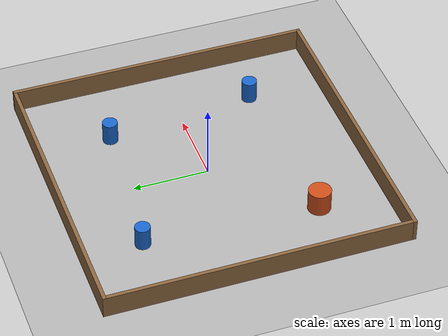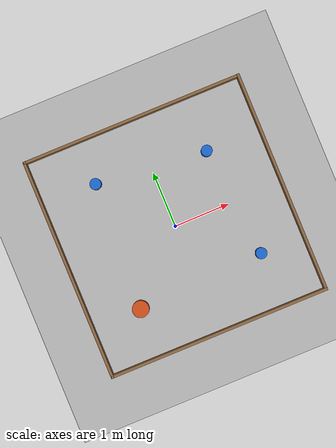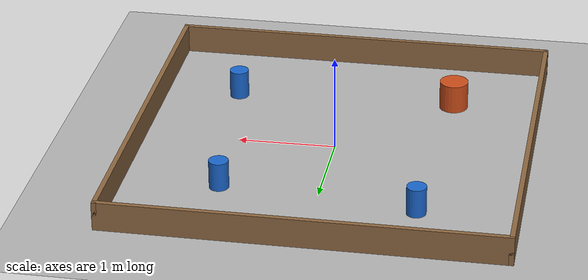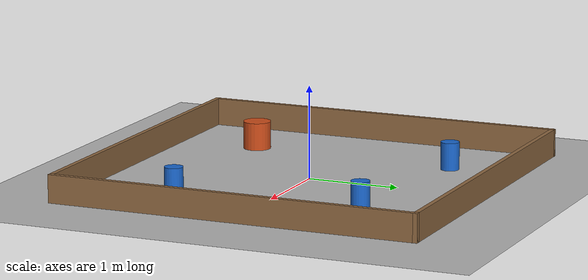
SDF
<?xml version="1.0" ?>
<!-- Arena 4x4 m con obstáculos cilíndricos (similar a la del laboratorio) -->
<sdf version="1.7">
  <world name="arena">
    <physics name="1ms" type="ignored">
      <max_step_size>0.001</max_step_size>
      <real_time_factor>1.0</real_time_factor>
    </physics>

    <plugin filename="libignition-gazebo-physics-system.so" name="ignition::gazebo::systems::Physics"/>
    <plugin filename="libignition-gazebo-user-commands-system.so" name="ignition::gazebo::systems::UserCommands"/>
    <plugin filename="libignition-gazebo-scene-broadcaster-system.so" name="ignition::gazebo::systems::SceneBroadcaster"/>
    <plugin filename="libignition-gazebo-sensors-system.so" name="ignition::gazebo::systems::Sensors"/>
    <plugin filename="libignition-gazebo-imu-system.so" name="ignition::gazebo::systems::Imu"/>

    <gravity>0 0 -9.81</gravity>
    <scene>
      <ambient>0.6 0.6 0.6 1</ambient>
      <background>0.8 0.85 0.9 1</background>
      <grid>false</grid>
      <shadows>false</shadows>   <!-- sombras: caras en WSL (D3D12 + ogre1) -->
    </scene>

    <!-- Luz y suelo definidos aquí (sin depender de Gazebo Fuel / Internet) -->
    <light type="directional" name="sun">
      <cast_shadows>false</cast_shadows>
      <pose>0 0 10 0 0 0</pose>
      <diffuse>0.8 0.8 0.8 1</diffuse>
      <specular>0.2 0.2 0.2 1</specular>
      <direction>-0.5 0.1 -0.9</direction>
    </light>

    <model name="ground_plane">
      <static>true</static>
      <link name="link">
        <collision name="collision">
          <geometry><plane><normal>0 0 1</normal><size>100 100</size></plane></geometry>
          <surface><friction><ode><mu>1.0</mu><mu2>1.0</mu2></ode></friction></surface>
        </collision>
        <visual name="visual">
          <geometry><plane><normal>0 0 1</normal><size>100 100</size></plane></geometry>
          <material><ambient>0.7 0.7 0.7 1</ambient><diffuse>0.7 0.7 0.7 1</diffuse></material>
        </visual>
      </link>
    </model>

    <!-- Arena de 4 x 4 m centrada en el origen (paredes de 30 cm, detectables por el LiDAR) -->
    <model name="wall_north">
      <static>true</static>
      <pose>0 2.0 0.15 0 0 0</pose>
      <link name="link">
        <collision name="c"><geometry><box><size>4.05 0.05 0.30</size></box></geometry></collision>
        <visual name="v"><geometry><box><size>4.05 0.05 0.30</size></box></geometry>
          <material><ambient>0.55 0.4 0.25 1</ambient><diffuse>0.55 0.4 0.25 1</diffuse></material></visual>
      </link>
    </model>
    <model name="wall_south">
      <static>true</static>
      <pose>0 -2.0 0.15 0 0 0</pose>
      <link name="link">
        <collision name="c"><geometry><box><size>4.05 0.05 0.30</size></box></geometry></collision>
        <visual name="v"><geometry><box><size>4.05 0.05 0.30</size></box></geometry>
          <material><ambient>0.55 0.4 0.25 1</ambient><diffuse>0.55 0.4 0.25 1</diffuse></material></visual>
      </link>
    </model>
    <model name="wall_east">
      <static>true</static>
      <pose>2.0 0 0.15 0 0 1.5708</pose>
      <link name="link">
        <collision name="c"><geometry><box><size>4.05 0.05 0.30</size></box></geometry></collision>
        <visual name="v"><geometry><box><size>4.05 0.05 0.30</size></box></geometry>
          <material><ambient>0.55 0.4 0.25 1</ambient><diffuse>0.55 0.4 0.25 1</diffuse></material></visual>
      </link>
    </model>
    <model name="wall_west">
      <static>true</static>
      <pose>-2.0 0 0.15 0 0 1.5708</pose>
      <link name="link">
        <collision name="c"><geometry><box><size>4.05 0.05 0.30</size></box></geometry></collision>
        <visual name="v"><geometry><box><size>4.05 0.05 0.30</size></box></geometry>
          <material><ambient>0.55 0.4 0.25 1</ambient><diffuse>0.55 0.4 0.25 1</diffuse></material></visual>
      </link>
    </model>

    <!-- Obstáculos / objetivos cilíndricos -->
    <model name="obstacle_1">
      <static>true</static>
      <pose>1.0 1.0 0.15 0 0 0</pose>
      <link name="link">
        <collision name="c"><geometry><cylinder><radius>0.1</radius><length>0.30</length></cylinder></geometry></collision>
        <visual name="v"><geometry><cylinder><radius>0.1</radius><length>0.30</length></cylinder></geometry>
          <material><ambient>0.1 0.4 0.8 1</ambient><diffuse>0.1 0.4 0.8 1</diffuse></material></visual>
      </link>
    </model>
    <model name="obstacle_2">
      <static>true</static>
      <pose>-1.0 1.2 0.15 0 0 0</pose>
      <link name="link">
        <collision name="c"><geometry><cylinder><radius>0.1</radius><length>0.30</length></cylinder></geometry></collision>
        <visual name="v"><geometry><cylinder><radius>0.1</radius><length>0.30</length></cylinder></geometry>
          <material><ambient>0.1 0.4 0.8 1</ambient><diffuse>0.1 0.4 0.8 1</diffuse></material></visual>
      </link>
    </model>
    <model name="obstacle_3">
      <static>true</static>
      <pose>1.2 -1.0 0.15 0 0 0</pose>
      <link name="link">
        <collision name="c"><geometry><cylinder><radius>0.1</radius><length>0.30</length></cylinder></geometry></collision>
        <visual name="v"><geometry><cylinder><radius>0.1</radius><length>0.30</length></cylinder></geometry>
          <material><ambient>0.1 0.4 0.8 1</ambient><diffuse>0.1 0.4 0.8 1</diffuse></material></visual>
      </link>
    </model>
    <model name="obstacle_4">
      <static>true</static>
      <pose>-1.1 -1.1 0.15 0 0 0</pose>
      <link name="link">
        <collision name="c"><geometry><cylinder><radius>0.15</radius><length>0.30</length></cylinder></geometry></collision>
        <visual name="v"><geometry><cylinder><radius>0.15</radius><length>0.30</length></cylinder></geometry>
          <material><ambient>0.8 0.3 0.1 1</ambient><diffuse>0.8 0.3 0.1 1</diffuse></material></visual>
      </link>
    </model>
  </world>
</sdf>
